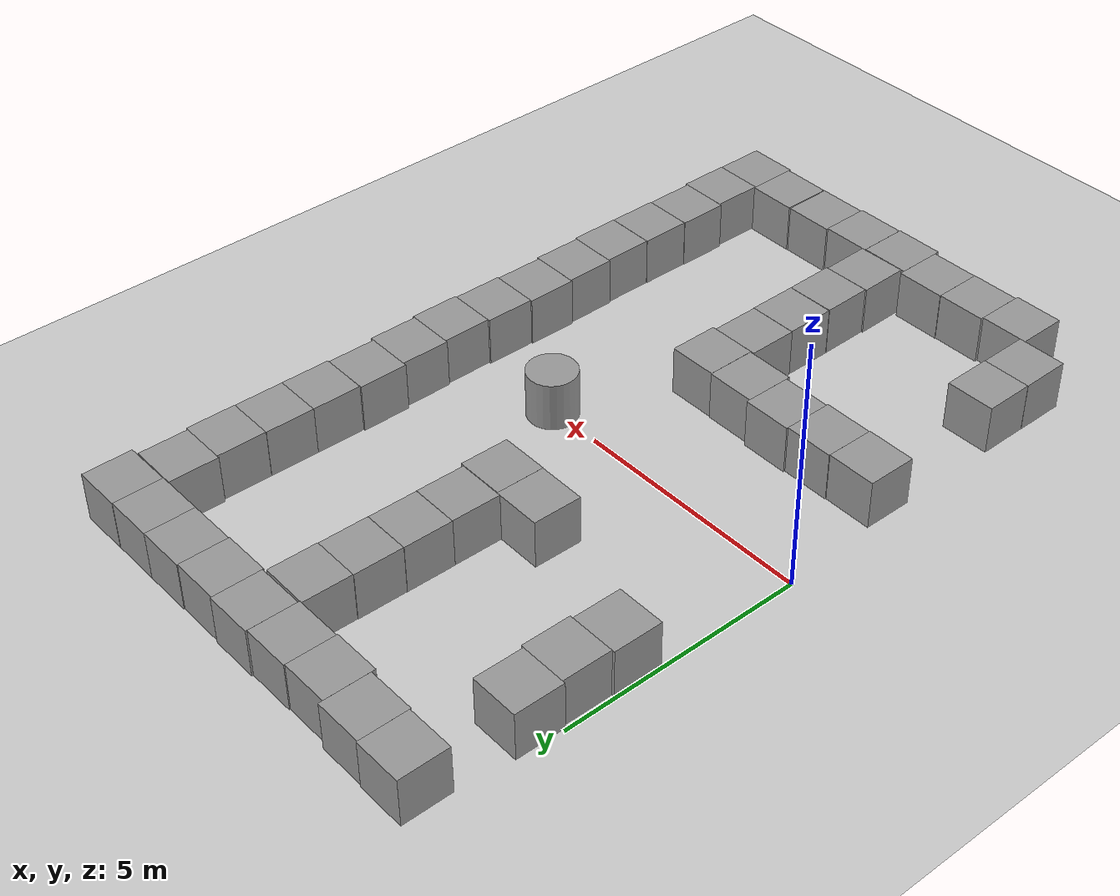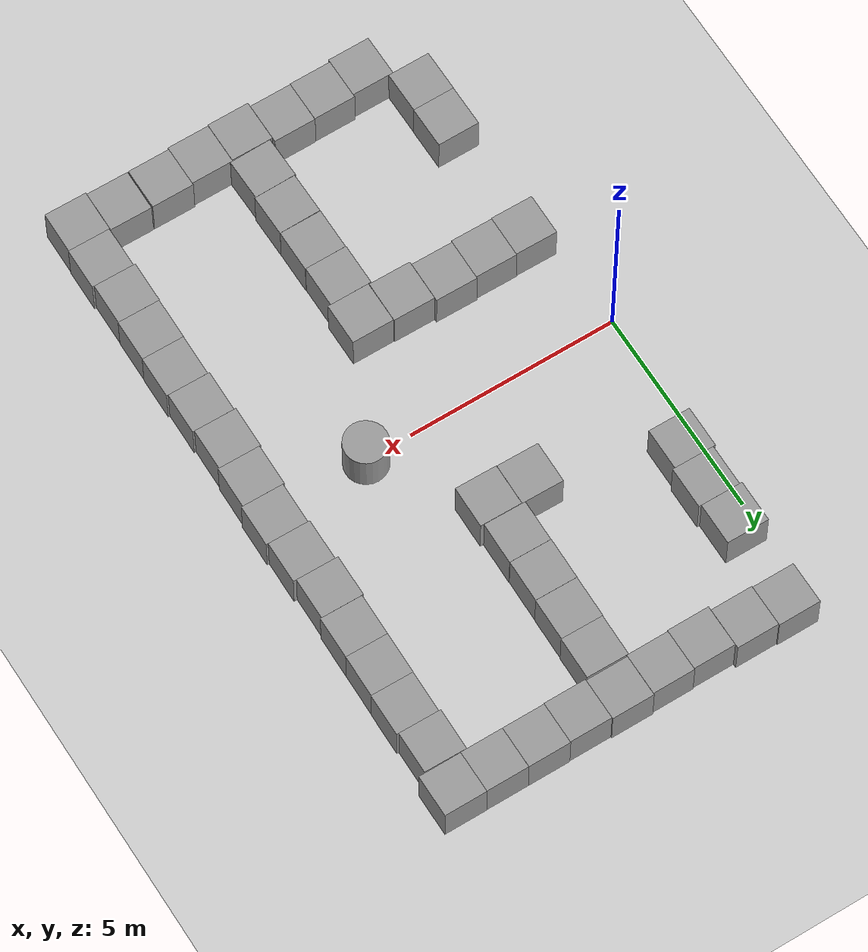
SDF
<sdf version="1.7">
 <world name="default">
  <model name="ground_plane">
   <static>1</static>
   <link name="link">
    <collision name="collision">
     <geometry><plane><normal>0 0 1</normal><size>100 100</size></plane></geometry>
     <surface>
      <contact><collide_bitmask>65535</collide_bitmask></contact>
      <friction><ode><mu>100</mu><mu2>50</mu2></ode></friction>
     </surface>
    </collision>
    <visual name="visual">
     <cast_shadows>0</cast_shadows>
     <geometry><plane><normal>0 0 1</normal><size>100 100</size></plane></geometry>
     <material>
      <script><uri>file://media/materials/scripts/gazebo.material</uri><name>Gazebo/Grey</name></script>
     </material>
    </visual>
   </link>
  </model>
  <model name="unit_box_clone_1">
   <pose>1.52066 -7.56872 0.499995 0 1e-05 0.004781</pose>
   <link name="link">
    <inertial>
     <mass>1</mass>
     <inertia>
      <ixx>0.166667</ixx>
      <ixy>0</ixy>
      <ixz>0</ixz>
      <iyy>0.166667</iyy>
      <iyz>0</iyz>
      <izz>0.166667</izz>
     </inertia>
    </inertial>
    <collision name="collision"><geometry><box><size>1 1 1</size></box></geometry></collision>
    <visual name="visual">
     <geometry><box><size>1 1 1</size></box></geometry>
     <material>
      <script><name>Gazebo/Grey</name><uri>file://media/materials/scripts/gazebo.material</uri></script>
     </material>
    </visual>
   </link>
  </model>
  <model name="unit_box_clone_2">
   <pose>2.52041 -7.50619 0.5 0 -0 0.004764</pose>
   <link name="link">
    <inertial>
     <mass>1</mass>
     <inertia>
      <ixx>0.166667</ixx>
      <ixy>0</ixy>
      <ixz>0</ixz>
      <iyy>0.166667</iyy>
      <iyz>0</iyz>
      <izz>0.166667</izz>
     </inertia>
    </inertial>
    <collision name="collision"><geometry><box><size>1 1 1</size></box></geometry></collision>
    <visual name="visual">
     <geometry><box><size>1 1 1</size></box></geometry>
     <material>
      <script><name>Gazebo/Grey</name><uri>file://media/materials/scripts/gazebo.material</uri></script>
     </material>
    </visual>
   </link>
  </model>
  <model name="unit_box_clone_3">
   <pose>3.521 -7.4896 0.499995 -1e-05 0 0.003476</pose>
   <link name="link">
    <inertial>
     <mass>1</mass>
     <inertia>
      <ixx>0.166667</ixx>
      <ixy>0</ixy>
      <ixz>0</ixz>
      <iyy>0.166667</iyy>
      <iyz>0</iyz>
      <izz>0.166667</izz>
     </inertia>
    </inertial>
    <collision name="collision"><geometry><box><size>1 1 1</size></box></geometry></collision>
    <visual name="visual">
     <geometry><box><size>1 1 1</size></box></geometry>
     <material>
      <script><name>Gazebo/Grey</name><uri>file://media/materials/scripts/gazebo.material</uri></script>
     </material>
    </visual>
   </link>
  </model>
  <model name="unit_box_clone_4">
   <pose>4.52182 -7.58155 0.5 0 -0 0.002312</pose>
   <link name="link">
    <inertial>
     <mass>1</mass>
     <inertia>
      <ixx>0.166667</ixx>
      <ixy>0</ixy>
      <ixz>0</ixz>
      <iyy>0.166667</iyy>
      <iyz>0</iyz>
      <izz>0.166667</izz>
     </inertia>
    </inertial>
    <collision name="collision"><geometry><box><size>1 1 1</size></box></geometry></collision>
    <visual name="visual">
     <geometry><box><size>1 1 1</size></box></geometry>
     <material>
      <script><name>Gazebo/Grey</name><uri>file://media/materials/scripts/gazebo.material</uri></script>
     </material>
    </visual>
   </link>
  </model>
  <model name="unit_box_clone_5">
   <pose>4.57544 -6.56698 0.499995 0 1e-05 0.020932</pose>
   <link name="link">
    <inertial>
     <mass>1</mass>
     <inertia>
      <ixx>0.166667</ixx>
      <ixy>0</ixy>
      <ixz>0</ixz>
      <iyy>0.166667</iyy>
      <iyz>0</iyz>
      <izz>0.166667</izz>
     </inertia>
    </inertial>
    <collision name="collision"><geometry><box><size>1 1 1</size></box></geometry></collision>
    <visual name="visual">
     <geometry><box><size>1 1 1</size></box></geometry>
     <material>
      <script><name>Gazebo/Grey</name><uri>file://media/materials/scripts/gazebo.material</uri></script>
     </material>
    </visual>
   </link>
  </model>
  <model name="unit_box_clone_6">
   <pose>4.5842 -5.56396 0.499995 0 -1e-05 0.016221</pose>
   <link name="link">
    <inertial>
     <mass>1</mass>
     <inertia>
      <ixx>0.166667</ixx>
      <ixy>0</ixy>
      <ixz>0</ixz>
      <iyy>0.166667</iyy>
      <iyz>0</iyz>
      <izz>0.166667</izz>
     </inertia>
    </inertial>
    <collision name="collision"><geometry><box><size>1 1 1</size></box></geometry></collision>
    <visual name="visual">
     <geometry><box><size>1 1 1</size></box></geometry>
     <material>
      <script><name>Gazebo/Grey</name><uri>file://media/materials/scripts/gazebo.material</uri></script>
     </material>
    </visual>
   </link>
  </model>
  <model name="unit_box_clone_7">
   <pose>4.57346 -4.5573 0.499995 -0 -1e-05 0.003007</pose>
   <link name="link">
    <inertial>
     <mass>1</mass>
     <inertia>
      <ixx>0.166667</ixx>
      <ixy>0</ixy>
      <ixz>0</ixz>
      <iyy>0.166667</iyy>
      <iyz>0</iyz>
      <izz>0.166667</izz>
     </inertia>
    </inertial>
    <collision name="collision"><geometry><box><size>1 1 1</size></box></geometry></collision>
    <visual name="visual">
     <geometry><box><size>1 1 1</size></box></geometry>
     <material>
      <script><name>Gazebo/Grey</name><uri>file://media/materials/scripts/gazebo.material</uri></script>
     </material>
    </visual>
   </link>
  </model>
  <model name="unit_box_clone_8">
   <pose>4.56116 -3.55637 0.499995 -1e-05 0 0.001132</pose>
   <link name="link">
    <inertial>
     <mass>1</mass>
     <inertia>
      <ixx>0.166667</ixx>
      <ixy>0</ixy>
      <ixz>0</ixz>
      <iyy>0.166667</iyy>
      <iyz>0</iyz>
      <izz>0.166667</izz>
     </inertia>
    </inertial>
    <collision name="collision"><geometry><box><size>1 1 1</size></box></geometry></collision>
    <visual name="visual">
     <geometry><box><size>1 1 1</size></box></geometry>
     <material>
      <script><name>Gazebo/Grey</name><uri>file://media/materials/scripts/gazebo.material</uri></script>
     </material>
    </visual>
   </link>
  </model>
  <model name="unit_box_clone_9">
   <pose>4.63155 -2.55598 0.5 0 -0 0.000421</pose>
   <link name="link">
    <inertial>
     <mass>1</mass>
     <inertia>
      <ixx>0.166667</ixx>
      <ixy>0</ixy>
      <ixz>0</ixz>
      <iyy>0.166667</iyy>
      <iyz>0</iyz>
      <izz>0.166667</izz>
     </inertia>
    </inertial>
    <collision name="collision"><geometry><box><size>1 1 1</size></box></geometry></collision>
    <visual name="visual">
     <geometry><box><size>1 1 1</size></box></geometry>
     <material>
      <script><name>Gazebo/Grey</name><uri>file://media/materials/scripts/gazebo.material</uri></script>
     </material>
    </visual>
   </link>
  </model>
  <model name="unit_box_clone_14">
   <pose>4.62729 2.42572 0.499995 0 1e-05 -0.011577</pose>
   <link name="link">
    <inertial>
     <mass>1</mass>
     <inertia>
      <ixx>0.166667</ixx>
      <ixy>0</ixy>
      <ixz>0</ixz>
      <iyy>0.166667</iyy>
      <iyz>0</iyz>
      <izz>0.166667</izz>
     </inertia>
    </inertial>
    <collision name="collision"><geometry><box><size>1 1 1</size></box></geometry></collision>
    <visual name="visual">
     <geometry><box><size>1 1 1</size></box></geometry>
     <material>
      <script><name>Gazebo/Grey</name><uri>file://media/materials/scripts/gazebo.material</uri></script>
     </material>
    </visual>
   </link>
  </model>
  <model name="unit_box_clone_15">
   <pose>4.56324 3.43446 0.499995 -1e-05 -0 -0.01434</pose>
   <link name="link">
    <inertial>
     <mass>1</mass>
     <inertia>
      <ixx>0.166667</ixx>
      <ixy>0</ixy>
      <ixz>0</ixz>
      <iyy>0.166667</iyy>
      <iyz>0</iyz>
      <izz>0.166667</izz>
     </inertia>
    </inertial>
    <collision name="collision"><geometry><box><size>1 1 1</size></box></geometry></collision>
    <visual name="visual">
     <geometry><box><size>1 1 1</size></box></geometry>
     <material>
      <script><name>Gazebo/Grey</name><uri>file://media/materials/scripts/gazebo.material</uri></script>
     </material>
    </visual>
   </link>
  </model>
  <model name="unit_box_clone_16">
   <pose>4.56989 4.436 0.499995 0 1e-05 -0.01189</pose>
   <link name="link">
    <inertial>
     <mass>1</mass>
     <inertia>
      <ixx>0.166667</ixx>
      <ixy>0</ixy>
      <ixz>0</ixz>
      <iyy>0.166667</iyy>
      <iyz>0</iyz>
      <izz>0.166667</izz>
     </inertia>
    </inertial>
    <collision name="collision"><geometry><box><size>1 1 1</size></box></geometry></collision>
    <visual name="visual">
     <geometry><box><size>1 1 1</size></box></geometry>
     <material>
      <script><name>Gazebo/Grey</name><uri>file://media/materials/scripts/gazebo.material</uri></script>
     </material>
    </visual>
   </link>
  </model>
  <model name="unit_box_clone_17">
   <pose>4.58635 5.43745 0.5 0 0 -0.010937</pose>
   <link name="link">
    <inertial>
     <mass>1</mass>
     <inertia>
      <ixx>0.166667</ixx>
      <ixy>0</ixy>
      <ixz>0</ixz>
      <iyy>0.166667</iyy>
      <iyz>0</iyz>
      <izz>0.166667</izz>
     </inertia>
    </inertial>
    <collision name="collision"><geometry><box><size>1 1 1</size></box></geometry></collision>
    <visual name="visual">
     <geometry><box><size>1 1 1</size></box></geometry>
     <material>
      <script><name>Gazebo/Grey</name><uri>file://media/materials/scripts/gazebo.material</uri></script>
     </material>
    </visual>
   </link>
  </model>
  <model name="unit_box_clone_18">
   <pose>4.60841 6.4373 0.499995 1e-05 -0 -0.010852</pose>
   <link name="link">
    <inertial>
     <mass>1</mass>
     <inertia>
      <ixx>0.166667</ixx>
      <ixy>0</ixy>
      <ixz>0</ixz>
      <iyy>0.166667</iyy>
      <iyz>0</iyz>
      <izz>0.166667</izz>
     </inertia>
    </inertial>
    <collision name="collision"><geometry><box><size>1 1 1</size></box></geometry></collision>
    <visual name="visual">
     <geometry><box><size>1 1 1</size></box></geometry>
     <material>
      <script><name>Gazebo/Grey</name><uri>file://media/materials/scripts/gazebo.material</uri></script>
     </material>
    </visual>
   </link>
  </model>
  <model name="unit_box_clone_19">
   <pose>4.66485 7.47334 0.499995 0 -1e-05 -0.000855</pose>
   <link name="link">
    <inertial>
     <mass>1</mass>
     <inertia>
      <ixx>0.166667</ixx>
      <ixy>0</ixy>
      <ixz>0</ixz>
      <iyy>0.166667</iyy>
      <iyz>0</iyz>
      <izz>0.166667</izz>
     </inertia>
    </inertial>
    <collision name="collision"><geometry><box><size>1 1 1</size></box></geometry></collision>
    <visual name="visual">
     <geometry><box><size>1 1 1</size></box></geometry>
     <material>
      <script><name>Gazebo/Grey</name><uri>file://media/materials/scripts/gazebo.material</uri></script>
     </material>
    </visual>
   </link>
  </model>
  <model name="unit_box_clone_20">
   <pose>3.66379 7.44276 0.499995 1e-05 -0 0.001076</pose>
   <link name="link">
    <inertial>
     <mass>1</mass>
     <inertia>
      <ixx>0.166667</ixx>
      <ixy>0</ixy>
      <ixz>0</ixz>
      <iyy>0.166667</iyy>
      <iyz>0</iyz>
      <izz>0.166667</izz>
     </inertia>
    </inertial>
    <collision name="collision"><geometry><box><size>1 1 1</size></box></geometry></collision>
    <visual name="visual">
     <geometry><box><size>1 1 1</size></box></geometry>
     <material>
      <script><name>Gazebo/Grey</name><uri>file://media/materials/scripts/gazebo.material</uri></script>
     </material>
    </visual>
   </link>
  </model>
  <model name="unit_box_clone_21">
   <pose>2.6637 7.42174 0.499995 -1e-05 0 0.000863</pose>
   <link name="link">
    <inertial>
     <mass>1</mass>
     <inertia>
      <ixx>0.166667</ixx>
      <ixy>0</ixy>
      <ixz>0</ixz>
      <iyy>0.166667</iyy>
      <iyz>0</iyz>
      <izz>0.166667</izz>
     </inertia>
    </inertial>
    <collision name="collision"><geometry><box><size>1 1 1</size></box></geometry></collision>
    <visual name="visual">
     <geometry><box><size>1 1 1</size></box></geometry>
     <material>
      <script><name>Gazebo/Grey</name><uri>file://media/materials/scripts/gazebo.material</uri></script>
     </material>
    </visual>
   </link>
  </model>
  <model name="unit_box_clone_22">
   <pose>1.66264 7.50897 0.499995 -1e-05 0 0.000387</pose>
   <link name="link">
    <inertial>
     <mass>1</mass>
     <inertia>
      <ixx>0.166667</ixx>
      <ixy>0</ixy>
      <ixz>0</ixz>
      <iyy>0.166667</iyy>
      <iyz>0</iyz>
      <izz>0.166667</izz>
     </inertia>
    </inertial>
    <collision name="collision"><geometry><box><size>1 1 1</size></box></geometry></collision>
    <visual name="visual">
     <geometry><box><size>1 1 1</size></box></geometry>
     <material>
      <script><name>Gazebo/Grey</name><uri>file://media/materials/scripts/gazebo.material</uri></script>
     </material>
    </visual>
   </link>
  </model>
  <model name="unit_box_clone_23">
   <pose>0.662513 7.53388 0.499995 1e-05 -0 0.000217</pose>
   <link name="link">
    <inertial>
     <mass>1</mass>
     <inertia>
      <ixx>0.166667</ixx>
      <ixy>0</ixy>
      <ixz>0</ixz>
      <iyy>0.166667</iyy>
      <iyz>0</iyz>
      <izz>0.166667</izz>
     </inertia>
    </inertial>
    <collision name="collision"><geometry><box><size>1 1 1</size></box></geometry></collision>
    <visual name="visual">
     <geometry><box><size>1 1 1</size></box></geometry>
     <material>
      <script><name>Gazebo/Grey</name><uri>file://media/materials/scripts/gazebo.material</uri></script>
     </material>
    </visual>
   </link>
  </model>
  <model name="unit_box_clone_65">
   <pose>0.628847 -6.57333 0.499995 1e-05 -0 0.005777</pose>
   <link name="link">
    <inertial>
     <mass>1</mass>
     <inertia>
      <ixx>0.166667</ixx>
      <ixy>0</ixy>
      <ixz>0</ixz>
      <iyy>0.166667</iyy>
      <iyz>0</iyz>
      <izz>0.166667</izz>
     </inertia>
    </inertial>
    <collision name="collision"><geometry><box><size>1 1 1</size></box></geometry></collision>
    <visual name="visual">
     <geometry><box><size>1 1 1</size></box></geometry>
     <material>
      <script><name>Gazebo/Grey</name><uri>file://media/materials/scripts/gazebo.material</uri></script>
     </material>
    </visual>
   </link>
  </model>
  <model name="unit_box_clone_66">
   <pose>0.627772 -5.5733 0.499995 -1e-05 0 0.005779</pose>
   <link name="link">
    <inertial>
     <mass>1</mass>
     <inertia>
      <ixx>0.166667</ixx>
      <ixy>0</ixy>
      <ixz>0</ixz>
      <iyy>0.166667</iyy>
      <iyz>0</iyz>
      <izz>0.166667</izz>
     </inertia>
    </inertial>
    <collision name="collision"><geometry><box><size>1 1 1</size></box></geometry></collision>
    <visual name="visual">
     <geometry><box><size>1 1 1</size></box></geometry>
     <material>
      <script><name>Gazebo/Grey</name><uri>file://media/materials/scripts/gazebo.material</uri></script>
     </material>
    </visual>
   </link>
  </model>
  <model name="unit_box_clone_67">
   <pose>3.62829 -2.53701 0.499995 0 1e-05 -0.006264</pose>
   <link name="link">
    <inertial>
     <mass>1</mass>
     <inertia>
      <ixx>0.166667</ixx>
      <ixy>0</ixy>
      <ixz>0</ixz>
      <iyy>0.166667</iyy>
      <iyz>0</iyz>
      <izz>0.166667</izz>
     </inertia>
    </inertial>
    <collision name="collision"><geometry><box><size>1 1 1</size></box></geometry></collision>
    <visual name="visual">
     <geometry><box><size>1 1 1</size></box></geometry>
     <material>
      <script><name>Gazebo/Grey</name><uri>file://media/materials/scripts/gazebo.material</uri></script>
     </material>
    </visual>
   </link>
  </model>
  <model name="unit_box_clone_68">
   <pose>2.62789 -2.46035 0.499995 0 1e-05 -0.008263</pose>
   <link name="link">
    <inertial>
     <mass>1</mass>
     <inertia>
      <ixx>0.166667</ixx>
      <ixy>0</ixy>
      <ixz>0</ixz>
      <iyy>0.166667</iyy>
      <iyz>0</iyz>
      <izz>0.166667</izz>
     </inertia>
    </inertial>
    <collision name="collision"><geometry><box><size>1 1 1</size></box></geometry></collision>
    <visual name="visual">
     <geometry><box><size>1 1 1</size></box></geometry>
     <material>
      <script><name>Gazebo/Grey</name><uri>file://media/materials/scripts/gazebo.material</uri></script>
     </material>
    </visual>
   </link>
  </model>
  <model name="unit_box_clone_69">
   <pose>1.6276 -2.48699 0.499995 1e-05 -0 -0.008301</pose>
   <link name="link">
    <inertial>
     <mass>1</mass>
     <inertia>
      <ixx>0.166667</ixx>
      <ixy>0</ixy>
      <ixz>0</ixz>
      <iyy>0.166667</iyy>
      <iyz>0</iyz>
      <izz>0.166667</izz>
     </inertia>
    </inertial>
    <collision name="collision"><geometry><box><size>1 1 1</size></box></geometry></collision>
    <visual name="visual">
     <geometry><box><size>1 1 1</size></box></geometry>
     <material>
      <script><name>Gazebo/Grey</name><uri>file://media/materials/scripts/gazebo.material</uri></script>
     </material>
    </visual>
   </link>
  </model>
  <model name="unit_box_clone_70">
   <pose>0.627459 -2.49583 0.499995 0 1e-05 -0.008346</pose>
   <link name="link">
    <inertial>
     <mass>1</mass>
     <inertia>
      <ixx>0.166667</ixx>
      <ixy>0</ixy>
      <ixz>0</ixz>
      <iyy>0.166667</iyy>
      <iyz>0</iyz>
      <izz>0.166667</izz>
     </inertia>
    </inertial>
    <collision name="collision"><geometry><box><size>1 1 1</size></box></geometry></collision>
    <visual name="visual">
     <geometry><box><size>1 1 1</size></box></geometry>
     <material>
      <script><name>Gazebo/Grey</name><uri>file://media/materials/scripts/gazebo.material</uri></script>
     </material>
    </visual>
   </link>
  </model>
  <model name="unit_box_clone_71">
   <pose>3.62655 2.4473 0.499995 1e-05 -0 -0.013426</pose>
   <link name="link">
    <inertial>
     <mass>1</mass>
     <inertia>
      <ixx>0.166667</ixx>
      <ixy>0</ixy>
      <ixz>0</ixz>
      <iyy>0.166667</iyy>
      <iyz>0</iyz>
      <izz>0.166667</izz>
     </inertia>
    </inertial>
    <collision name="collision"><geometry><box><size>1 1 1</size></box></geometry></collision>
    <visual name="visual">
     <geometry><box><size>1 1 1</size></box></geometry>
     <material>
      <script><name>Gazebo/Grey</name><uri>file://media/materials/scripts/gazebo.material</uri></script>
     </material>
    </visual>
   </link>
  </model>
  <model name="unit_box_clone_74">
   <pose>0.528754 3.43441 0.499995 -0 -1e-05 -0.005667</pose>
   <link name="link">
    <inertial>
     <mass>1</mass>
     <inertia>
      <ixx>0.166667</ixx>
      <ixy>0</ixy>
      <ixz>0</ixz>
      <iyy>0.166667</iyy>
      <iyz>0</iyz>
      <izz>0.166667</izz>
     </inertia>
    </inertial>
    <collision name="collision"><geometry><box><size>1 1 1</size></box></geometry></collision>
    <visual name="visual">
     <geometry><box><size>1 1 1</size></box></geometry>
     <material>
      <script><name>Gazebo/Grey</name><uri>file://media/materials/scripts/gazebo.material</uri></script>
     </material>
    </visual>
   </link>
  </model>
  <model name="unit_box_clone_75">
   <pose>0.591393 4.43407 0.499995 0 -1e-05 -0.005668</pose>
   <link name="link">
    <inertial>
     <mass>1</mass>
     <inertia>
      <ixx>0.166667</ixx>
      <ixy>0</ixy>
      <ixz>0</ixz>
      <iyy>0.166667</iyy>
      <iyz>0</iyz>
      <izz>0.166667</izz>
     </inertia>
    </inertial>
    <collision name="collision"><geometry><box><size>1 1 1</size></box></geometry></collision>
    <visual name="visual">
     <geometry><box><size>1 1 1</size></box></geometry>
     <material>
      <script><name>Gazebo/Grey</name><uri>file://media/materials/scripts/gazebo.material</uri></script>
     </material>
    </visual>
   </link>
  </model>
  <model name="unit_box_clone_76">
   <pose>0.538161 5.43446 0.499995 0 -1e-05 -0.005513</pose>
   <link name="link">
    <inertial>
     <mass>1</mass>
     <inertia>
      <ixx>0.166667</ixx>
      <ixy>0</ixy>
      <ixz>0</ixz>
      <iyy>0.166667</iyy>
      <iyz>0</iyz>
      <izz>0.166667</izz>
     </inertia>
    </inertial>
    <collision name="collision"><geometry><box><size>1 1 1</size></box></geometry></collision>
    <visual name="visual">
     <geometry><box><size>1 1 1</size></box></geometry>
     <material>
      <script><name>Gazebo/Grey</name><uri>file://media/materials/scripts/gazebo.material</uri></script>
     </material>
    </visual>
   </link>
  </model>
  <model name="unit_box_clone_72">
   <pose>5.52205 -7.55772 0.499995 -1e-05 -0 0.002311</pose>
   <link name="link">
    <inertial>
     <mass>1</mass>
     <inertia>
      <ixx>0.166667</ixx>
      <ixy>0</ixy>
      <ixz>0</ixz>
      <iyy>0.166667</iyy>
      <iyz>0</iyz>
      <izz>0.166667</izz>
     </inertia>
    </inertial>
    <collision name="collision"><geometry><box><size>1 1 1</size></box></geometry></collision>
    <visual name="visual">
     <geometry><box><size>1 1 1</size></box></geometry>
     <material>
      <script><name>Gazebo/Grey</name><uri>file://media/materials/scripts/gazebo.material</uri></script>
     </material>
    </visual>
   </link>
  </model>
  <model name="unit_box_clone_78">
   <pose>6.52197 -7.51524 0.499995 -1e-05 0 0.002303</pose>
   <link name="link">
    <inertial>
     <mass>1</mass>
     <inertia>
      <ixx>0.166667</ixx>
      <ixy>0</ixy>
      <ixz>0</ixz>
      <iyy>0.166667</iyy>
      <iyz>0</iyz>
      <izz>0.166667</izz>
     </inertia>
    </inertial>
    <collision name="collision"><geometry><box><size>1 1 1</size></box></geometry></collision>
    <visual name="visual">
     <geometry><box><size>1 1 1</size></box></geometry>
     <material>
      <script><name>Gazebo/Grey</name><uri>file://media/materials/scripts/gazebo.material</uri></script>
     </material>
    </visual>
   </link>
  </model>
  <model name="unit_box_clone_79">
   <pose>7.54593 -7.51208 0.499995 -0 -1e-05 -0.004383</pose>
   <link name="link">
    <inertial>
     <mass>1</mass>
     <inertia>
      <ixx>0.166667</ixx>
      <ixy>0</ixy>
      <ixz>0</ixz>
      <iyy>0.166667</iyy>
      <iyz>0</iyz>
      <izz>0.166667</izz>
     </inertia>
    </inertial>
    <collision name="collision"><geometry><box><size>1 1 1</size></box></geometry></collision>
    <visual name="visual">
     <geometry><box><size>1 1 1</size></box></geometry>
     <material>
      <script><name>Gazebo/Grey</name><uri>file://media/materials/scripts/gazebo.material</uri></script>
     </material>
    </visual>
   </link>
  </model>
  <model name="unit_box_clone_80">
   <pose>8.54739 -7.55471 0.5 -1e-06 -0 -0.006684</pose>
   <link name="link">
    <inertial>
     <mass>1</mass>
     <inertia>
      <ixx>0.166667</ixx>
      <ixy>0</ixy>
      <ixz>0</ixz>
      <iyy>0.166667</iyy>
      <iyz>0</iyz>
      <izz>0.166667</izz>
     </inertia>
    </inertial>
    <collision name="collision"><geometry><box><size>1 1 1</size></box></geometry></collision>
    <visual name="visual">
     <geometry><box><size>1 1 1</size></box></geometry>
     <material>
      <script><name>Gazebo/Grey</name><uri>file://media/materials/scripts/gazebo.material</uri></script>
     </material>
    </visual>
   </link>
  </model>
  <model name="unit_box_clone_81">
   <pose>8.56479 -6.5548 0.5 0 0 -0.00669</pose>
   <link name="link">
    <inertial>
     <mass>1</mass>
     <inertia>
      <ixx>0.166667</ixx>
      <ixy>0</ixy>
      <ixz>0</ixz>
      <iyy>0.166667</iyy>
      <iyz>0</iyz>
      <izz>0.166667</izz>
     </inertia>
    </inertial>
    <collision name="collision"><geometry><box><size>1 1 1</size></box></geometry></collision>
    <visual name="visual">
     <geometry><box><size>1 1 1</size></box></geometry>
     <material>
      <script><name>Gazebo/Grey</name><uri>file://media/materials/scripts/gazebo.material</uri></script>
     </material>
    </visual>
   </link>
  </model>
  <model name="unit_box_clone_82">
   <pose>8.52754 -5.55445 0.499995 0 1e-05 -0.006853</pose>
   <link name="link">
    <inertial>
     <mass>1</mass>
     <inertia>
      <ixx>0.166667</ixx>
      <ixy>0</ixy>
      <ixz>0</ixz>
      <iyy>0.166667</iyy>
      <iyz>0</iyz>
      <izz>0.166667</izz>
     </inertia>
    </inertial>
    <collision name="collision"><geometry><box><size>1 1 1</size></box></geometry></collision>
    <visual name="visual">
     <geometry><box><size>1 1 1</size></box></geometry>
     <material>
      <script><name>Gazebo/Grey</name><uri>file://media/materials/scripts/gazebo.material</uri></script>
     </material>
    </visual>
   </link>
  </model>
  <model name="unit_box_clone_83">
   <pose>8.54463 -4.55424 0.499995 0 -1e-05 -0.007458</pose>
   <link name="link">
    <inertial>
     <mass>1</mass>
     <inertia>
      <ixx>0.166667</ixx>
      <ixy>0</ixy>
      <ixz>0</ixz>
      <iyy>0.166667</iyy>
      <iyz>0</iyz>
      <izz>0.166667</izz>
     </inertia>
    </inertial>
    <collision name="collision"><geometry><box><size>1 1 1</size></box></geometry></collision>
    <visual name="visual">
     <geometry><box><size>1 1 1</size></box></geometry>
     <material>
      <script><name>Gazebo/Grey</name><uri>file://media/materials/scripts/gazebo.material</uri></script>
     </material>
    </visual>
   </link>
  </model>
  <model name="unit_box_clone_84">
   <pose>8.55718 -3.55418 0.499995 0 -1e-05 -0.00772</pose>
   <link name="link">
    <inertial>
     <mass>1</mass>
     <inertia>
      <ixx>0.166667</ixx>
      <ixy>0</ixy>
      <ixz>0</ixz>
      <iyy>0.166667</iyy>
      <iyz>0</iyz>
      <izz>0.166667</izz>
     </inertia>
    </inertial>
    <collision name="collision"><geometry><box><size>1 1 1</size></box></geometry></collision>
    <visual name="visual">
     <geometry><box><size>1 1 1</size></box></geometry>
     <material>
      <script><name>Gazebo/Grey</name><uri>file://media/materials/scripts/gazebo.material</uri></script>
     </material>
    </visual>
   </link>
  </model>
  <model name="unit_box_clone_85">
   <pose>8.52653 -2.55351 0.5 -0 -0 -0.008512</pose>
   <link name="link">
    <inertial>
     <mass>1</mass>
     <inertia>
      <ixx>0.166667</ixx>
      <ixy>0</ixy>
      <ixz>0</ixz>
      <iyy>0.166667</iyy>
      <iyz>0</iyz>
      <izz>0.166667</izz>
     </inertia>
    </inertial>
    <collision name="collision"><geometry><box><size>1 1 1</size></box></geometry></collision>
    <visual name="visual">
     <geometry><box><size>1 1 1</size></box></geometry>
     <material>
      <script><name>Gazebo/Grey</name><uri>file://media/materials/scripts/gazebo.material</uri></script>
     </material>
    </visual>
   </link>
  </model>
  <model name="unit_box_clone_86">
   <pose>8.49407 -1.553 0.499995 -1e-05 -0 -0.008895</pose>
   <link name="link">
    <inertial>
     <mass>1</mass>
     <inertia>
      <ixx>0.166667</ixx>
      <ixy>0</ixy>
      <ixz>0</ixz>
      <iyy>0.166667</iyy>
      <iyz>0</iyz>
      <izz>0.166667</izz>
     </inertia>
    </inertial>
    <collision name="collision"><geometry><box><size>1 1 1</size></box></geometry></collision>
    <visual name="visual">
     <geometry><box><size>1 1 1</size></box></geometry>
     <material>
      <script><name>Gazebo/Grey</name><uri>file://media/materials/scripts/gazebo.material</uri></script>
     </material>
    </visual>
   </link>
  </model>
  <model name="unit_box_clone_87">
   <pose>8.53151 -0.553239 0.499995 1e-05 0 -0.009027</pose>
   <link name="link">
    <inertial>
     <mass>1</mass>
     <inertia>
      <ixx>0.166667</ixx>
      <ixy>0</ixy>
      <ixz>0</ixz>
      <iyy>0.166667</iyy>
      <iyz>0</iyz>
      <izz>0.166667</izz>
     </inertia>
    </inertial>
    <collision name="collision"><geometry><box><size>1 1 1</size></box></geometry></collision>
    <visual name="visual">
     <geometry><box><size>1 1 1</size></box></geometry>
     <material>
      <script><name>Gazebo/Grey</name><uri>file://media/materials/scripts/gazebo.material</uri></script>
     </material>
    </visual>
   </link>
  </model>
  <model name="unit_box_clone_88">
   <pose>8.57786 0.446395 0.5 0 0 -0.009036</pose>
   <link name="link">
    <inertial>
     <mass>1</mass>
     <inertia>
      <ixx>0.166667</ixx>
      <ixy>0</ixy>
      <ixz>0</ixz>
      <iyy>0.166667</iyy>
      <iyz>0</iyz>
      <izz>0.166667</izz>
     </inertia>
    </inertial>
    <collision name="collision"><geometry><box><size>1 1 1</size></box></geometry></collision>
    <visual name="visual">
     <geometry><box><size>1 1 1</size></box></geometry>
     <material>
      <script><name>Gazebo/Grey</name><uri>file://media/materials/scripts/gazebo.material</uri></script>
     </material>
    </visual>
   </link>
  </model>
  <model name="unit_box_clone_89">
   <pose>8.54078 1.44677 0.499995 0 1e-05 -0.009041</pose>
   <link name="link">
    <inertial>
     <mass>1</mass>
     <inertia>
      <ixx>0.166667</ixx>
      <ixy>0</ixy>
      <ixz>0</ixz>
      <iyy>0.166667</iyy>
      <iyz>0</iyz>
      <izz>0.166667</izz>
     </inertia>
    </inertial>
    <collision name="collision"><geometry><box><size>1 1 1</size></box></geometry></collision>
    <visual name="visual">
     <geometry><box><size>1 1 1</size></box></geometry>
     <material>
      <script><name>Gazebo/Grey</name><uri>file://media/materials/scripts/gazebo.material</uri></script>
     </material>
    </visual>
   </link>
  </model>
  <model name="unit_box_clone_90">
   <pose>8.47634 2.44753 0.5 0 -0 -0.009306</pose>
   <link name="link">
    <inertial>
     <mass>1</mass>
     <inertia>
      <ixx>0.166667</ixx>
      <ixy>0</ixy>
      <ixz>0</ixz>
      <iyy>0.166667</iyy>
      <iyz>0</iyz>
      <izz>0.166667</izz>
     </inertia>
    </inertial>
    <collision name="collision"><geometry><box><size>1 1 1</size></box></geometry></collision>
    <visual name="visual">
     <geometry><box><size>1 1 1</size></box></geometry>
     <material>
      <script><name>Gazebo/Grey</name><uri>file://media/materials/scripts/gazebo.material</uri></script>
     </material>
    </visual>
   </link>
  </model>
  <model name="unit_box_clone_91">
   <pose>8.51943 3.44794 0.5 0 0 -0.010953</pose>
   <link name="link">
    <inertial>
     <mass>1</mass>
     <inertia>
      <ixx>0.166667</ixx>
      <ixy>0</ixy>
      <ixz>0</ixz>
      <iyy>0.166667</iyy>
      <iyz>0</iyz>
      <izz>0.166667</izz>
     </inertia>
    </inertial>
    <collision name="collision"><geometry><box><size>1 1 1</size></box></geometry></collision>
    <visual name="visual">
     <geometry><box><size>1 1 1</size></box></geometry>
     <material>
      <script><name>Gazebo/Grey</name><uri>file://media/materials/scripts/gazebo.material</uri></script>
     </material>
    </visual>
   </link>
  </model>
  <model name="unit_box_clone_92">
   <pose>8.52961 4.4479 0.499995 -1e-05 -0 -0.010951</pose>
   <link name="link">
    <inertial>
     <mass>1</mass>
     <inertia>
      <ixx>0.166667</ixx>
      <ixy>0</ixy>
      <ixz>0</ixz>
      <iyy>0.166667</iyy>
      <iyz>0</iyz>
      <izz>0.166667</izz>
     </inertia>
    </inertial>
    <collision name="collision"><geometry><box><size>1 1 1</size></box></geometry></collision>
    <visual name="visual">
     <geometry><box><size>1 1 1</size></box></geometry>
     <material>
      <script><name>Gazebo/Grey</name><uri>file://media/materials/scripts/gazebo.material</uri></script>
     </material>
    </visual>
   </link>
  </model>
  <model name="unit_box_clone_93">
   <pose>8.54711 5.44777 0.499995 0 1e-05 -0.010959</pose>
   <link name="link">
    <inertial>
     <mass>1</mass>
     <inertia>
      <ixx>0.166667</ixx>
      <ixy>0</ixy>
      <ixz>0</ixz>
      <iyy>0.166667</iyy>
      <iyz>0</iyz>
      <izz>0.166667</izz>
     </inertia>
    </inertial>
    <collision name="collision"><geometry><box><size>1 1 1</size></box></geometry></collision>
    <visual name="visual">
     <geometry><box><size>1 1 1</size></box></geometry>
     <material>
      <script><name>Gazebo/Grey</name><uri>file://media/materials/scripts/gazebo.material</uri></script>
     </material>
    </visual>
   </link>
  </model>
  <model name="unit_box_clone_94">
   <pose>8.5069 6.44827 0.5 0 0 -0.010959</pose>
   <link name="link">
    <inertial>
     <mass>1</mass>
     <inertia>
      <ixx>0.166667</ixx>
      <ixy>0</ixy>
      <ixz>0</ixz>
      <iyy>0.166667</iyy>
      <iyz>0</iyz>
      <izz>0.166667</izz>
     </inertia>
    </inertial>
    <collision name="collision"><geometry><box><size>1 1 1</size></box></geometry></collision>
    <visual name="visual">
     <geometry><box><size>1 1 1</size></box></geometry>
     <material>
      <script><name>Gazebo/Grey</name><uri>file://media/materials/scripts/gazebo.material</uri></script>
     </material>
    </visual>
   </link>
  </model>
  <model name="unit_box_clone_95">
   <pose>8.665 7.46272 0.499995 0 1e-05 -0.000858</pose>
   <link name="link">
    <inertial>
     <mass>1</mass>
     <inertia>
      <ixx>0.166667</ixx>
      <ixy>0</ixy>
      <ixz>0</ixz>
      <iyy>0.166667</iyy>
      <iyz>0</iyz>
      <izz>0.166667</izz>
     </inertia>
    </inertial>
    <collision name="collision"><geometry><box><size>1 1 1</size></box></geometry></collision>
    <visual name="visual">
     <geometry><box><size>1 1 1</size></box></geometry>
     <material>
      <script><name>Gazebo/Grey</name><uri>file://media/materials/scripts/gazebo.material</uri></script>
     </material>
    </visual>
   </link>
  </model>
  <model name="unit_box_clone_96">
   <pose>7.66498 7.45815 0.499995 -1e-05 -0 -0.000853</pose>
   <link name="link">
    <inertial>
     <mass>1</mass>
     <inertia>
      <ixx>0.166667</ixx>
      <ixy>0</ixy>
      <ixz>0</ixz>
      <iyy>0.166667</iyy>
      <iyz>0</iyz>
      <izz>0.166667</izz>
     </inertia>
    </inertial>
    <collision name="collision"><geometry><box><size>1 1 1</size></box></geometry></collision>
    <visual name="visual">
     <geometry><box><size>1 1 1</size></box></geometry>
     <material>
      <script><name>Gazebo/Grey</name><uri>file://media/materials/scripts/gazebo.material</uri></script>
     </material>
    </visual>
   </link>
  </model>
  <model name="unit_box_clone_97">
   <pose>6.66496 7.4595 0.499995 0 -1e-05 -0.000815</pose>
   <link name="link">
    <inertial>
     <mass>1</mass>
     <inertia>
      <ixx>0.166667</ixx>
      <ixy>0</ixy>
      <ixz>0</ixz>
      <iyy>0.166667</iyy>
      <iyz>0</iyz>
      <izz>0.166667</izz>
     </inertia>
    </inertial>
    <collision name="collision"><geometry><box><size>1 1 1</size></box></geometry></collision>
    <visual name="visual">
     <geometry><box><size>1 1 1</size></box></geometry>
     <material>
      <script><name>Gazebo/Grey</name><uri>file://media/materials/scripts/gazebo.material</uri></script>
     </material>
    </visual>
   </link>
  </model>
  <model name="unit_box_clone_98">
   <pose>5.66485 7.44678 0.499995 -0 1e-05 -0.000855</pose>
   <link name="link">
    <inertial>
     <mass>1</mass>
     <inertia>
      <ixx>0.166667</ixx>
      <ixy>0</ixy>
      <ixz>0</ixz>
      <iyy>0.166667</iyy>
      <iyz>0</iyz>
      <izz>0.166667</izz>
     </inertia>
    </inertial>
    <collision name="collision"><geometry><box><size>1 1 1</size></box></geometry></collision>
    <visual name="visual">
     <geometry><box><size>1 1 1</size></box></geometry>
     <material>
      <script><name>Gazebo/Grey</name><uri>file://media/materials/scripts/gazebo.material</uri></script>
     </material>
    </visual>
   </link>
  </model>
  <model name="unit_cylinder">
   <pose>6.11831 0.041025 0.499997 3e-06 4e-06 -0</pose>
   <link name="link">
    <inertial>
     <mass>1</mass>
     <inertia><ixx>0.145833</ixx><ixy>0</ixy><ixz>0</ixz><iyy>0.145833</iyy><iyz>0</iyz><izz>0.125</izz></inertia>
    </inertial>
    <collision name="collision">
     <geometry><cylinder><radius>0.5</radius><length>1</length></cylinder></geometry>
    </collision>
    <visual name="visual">
     <geometry><cylinder><radius>0.5</radius><length>1</length></cylinder></geometry>
     <material>
      <script><name>Gazebo/Grey</name><uri>file://media/materials/scripts/gazebo.material</uri></script>
     </material>
    </visual>
   </link>
  </model>
 </world>
</sdf>
